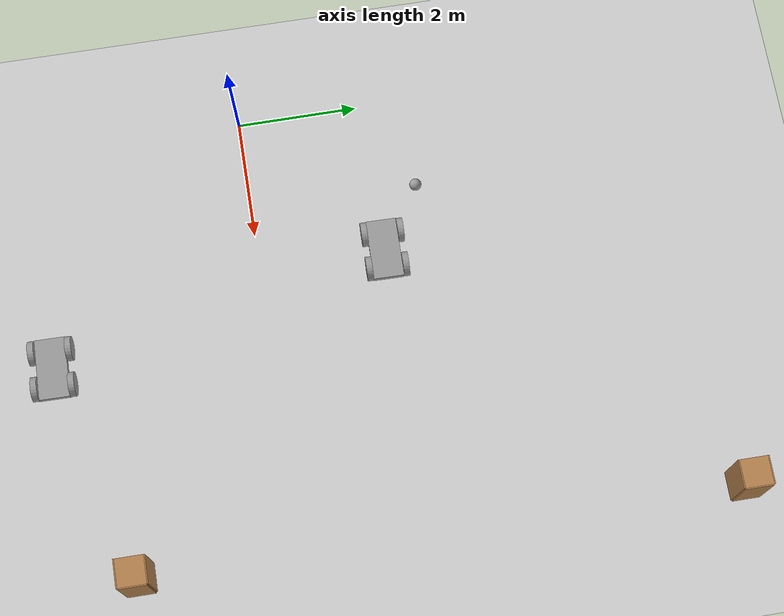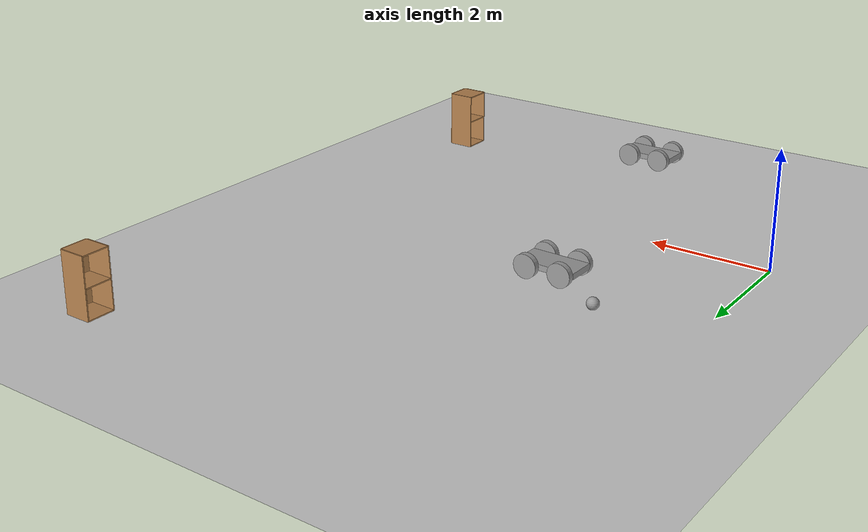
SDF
<sdf version="1.6">
 <world name="default">
  <model name="ground_plane">
   <static>1</static>
   <link name="link">
    <collision name="collision">
     <geometry><plane><normal>0 0 1</normal><size>100 100</size></plane></geometry>
     <surface>
      <contact><collide_bitmask>65535</collide_bitmask></contact>
      <friction><ode><mu>100</mu><mu2>50</mu2></ode></friction>
     </surface>
    </collision>
    <visual name="visual">
     <cast_shadows>0</cast_shadows>
     <geometry><plane><normal>0 0 1</normal><size>100 100</size></plane></geometry>
     <material>
      <script><uri>file://media/materials/scripts/gazebo.material</uri><name>Gazebo/Grey</name></script>
     </material>
    </visual>
   </link>
  </model>
  <model name="cabinet">
   <static>1</static>
   <link name="cabinet_bottom_plate">
    <inertial>
     <pose>0 0 -1 0 -0 0</pose>
     <inertia><ixx>2.05</ixx><ixy>0</ixy><ixz>0</ixz><iyy>2.05</iyy><iyz>0</iyz><izz>2.05</izz></inertia>
     <mass>25</mass>
    </inertial>
    <collision name="cabinet_bottom_plate_geom">
     <pose>0 0 0.01 0 -0 0</pose>
     <geometry><box><size>0.45 0.45 0.02</size></box></geometry>
    </collision>
    <visual name="cabinet_bottom_plate_geom_visual">
     <pose>0 0 0.01 0 -0 0</pose>
     <geometry><box><size>0.45 0.45 0.02</size></box></geometry>
     <material>
      <script><uri>file://media/materials/scripts/gazebo.material</uri><name>Gazebo/Wood</name></script>
     </material>
    </visual>
    <collision name="cabinet_bottom_plate_geom_cabinet_back_plate">
     <pose>0.235 0 0.51 0 -0 0</pose>
     <geometry><box><size>0.02 0.45 1.02</size></box></geometry>
    </collision>
    <visual name="cabinet_bottom_plate_geom_cabinet_back_plate_visual">
     <pose>0.235 0 0.51 0 -0 0</pose>
     <geometry><box><size>0.02 0.45 1.02</size></box></geometry>
     <material>
      <script><uri>file://media/materials/scripts/gazebo.material</uri><name>Gazebo/Wood</name></script>
     </material>
    </visual>
    <collision name="cabinet_bottom_plate_geom_cabinet_left_plate">
     <pose>0 0.235 0.51 0 -0 0</pose>
     <geometry><box><size>0.45 0.02 1.02</size></box></geometry>
    </collision>
    <visual name="cabinet_bottom_plate_geom_cabinet_left_plate_visual">
     <pose>0 0.235 0.51 0 -0 0</pose>
     <geometry><box><size>0.45 0.02 1.02</size></box></geometry>
     <material>
      <script><uri>file://media/materials/scripts/gazebo.material</uri><name>Gazebo/Wood</name></script>
     </material>
    </visual>
    <collision name="cabinet_bottom_plate_geom_cabinet_middle_plate">
     <pose>0 0 0.51 0 -0 0</pose>
     <geometry><box><size>0.45 0.45 0.02</size></box></geometry>
    </collision>
    <visual name="cabinet_bottom_plate_geom_cabinet_middle_plate_visual">
     <pose>0 0 0.51 0 -0 0</pose>
     <geometry><box><size>0.45 0.45 0.02</size></box></geometry>
     <material>
      <script><uri>file://media/materials/scripts/gazebo.material</uri><name>Gazebo/Wood</name></script>
     </material>
    </visual>
    <collision name="cabinet_bottom_plate_geom_cabinet_right_plate">
     <pose>0 -0.235 0.51 0 -0 0</pose>
     <geometry><box><size>0.45 0.02 1.02</size></box></geometry>
    </collision>
    <visual name="cabinet_bottom_plate_geom_cabinet_right_plate_visual">
     <pose>0 -0.235 0.51 0 -0 0</pose>
     <geometry><box><size>0.45 0.02 1.02</size></box></geometry>
     <material>
      <script><uri>file://media/materials/scripts/gazebo.material</uri><name>Gazebo/Wood</name></script>
     </material>
    </visual>
    <collision name="cabinet_bottom_plate_geom_cabinet_top_plate">
     <pose>0 0 1.01 0 -0 0</pose>
     <geometry><box><size>0.45 0.45 0.02</size></box></geometry>
    </collision>
    <visual name="cabinet_bottom_plate_geom_cabinet_top_plate_visual">
     <pose>0 0 1.01 0 -0 0</pose>
     <geometry><box><size>0.45 0.45 0.02</size></box></geometry>
     <material>
      <script><uri>file://media/materials/scripts/gazebo.material</uri><name>Gazebo/Wood</name></script>
     </material>
    </visual>
   </link>
   <pose>7.38503 7.08593 0 0 -0 0</pose>
  </model>
  <model name="cabinet_0">
   <static>1</static>
   <link name="cabinet_bottom_plate">
    <inertial>
     <pose>0 0 -1 0 -0 0</pose>
     <inertia><ixx>2.05</ixx><ixy>0</ixy><ixz>0</ixz><iyy>2.05</iyy><iyz>0</iyz><izz>2.05</izz></inertia>
     <mass>25</mass>
    </inertial>
    <collision name="cabinet_bottom_plate_geom">
     <pose>0 0 0.01 0 -0 0</pose>
     <geometry><box><size>0.45 0.45 0.02</size></box></geometry>
    </collision>
    <visual name="cabinet_bottom_plate_geom_visual">
     <pose>0 0 0.01 0 -0 0</pose>
     <geometry><box><size>0.45 0.45 0.02</size></box></geometry>
     <material>
      <script><uri>file://media/materials/scripts/gazebo.material</uri><name>Gazebo/Wood</name></script>
     </material>
    </visual>
    <collision name="cabinet_bottom_plate_geom_cabinet_back_plate">
     <pose>0.235 0 0.51 0 -0 0</pose>
     <geometry><box><size>0.02 0.45 1.02</size></box></geometry>
    </collision>
    <visual name="cabinet_bottom_plate_geom_cabinet_back_plate_visual">
     <pose>0.235 0 0.51 0 -0 0</pose>
     <geometry><box><size>0.02 0.45 1.02</size></box></geometry>
     <material>
      <script><uri>file://media/materials/scripts/gazebo.material</uri><name>Gazebo/Wood</name></script>
     </material>
    </visual>
    <collision name="cabinet_bottom_plate_geom_cabinet_left_plate">
     <pose>0 0.235 0.51 0 -0 0</pose>
     <geometry><box><size>0.45 0.02 1.02</size></box></geometry>
    </collision>
    <visual name="cabinet_bottom_plate_geom_cabinet_left_plate_visual">
     <pose>0 0.235 0.51 0 -0 0</pose>
     <geometry><box><size>0.45 0.02 1.02</size></box></geometry>
     <material>
      <script><uri>file://media/materials/scripts/gazebo.material</uri><name>Gazebo/Wood</name></script>
     </material>
    </visual>
    <collision name="cabinet_bottom_plate_geom_cabinet_middle_plate">
     <pose>0 0 0.51 0 -0 0</pose>
     <geometry><box><size>0.45 0.45 0.02</size></box></geometry>
    </collision>
    <visual name="cabinet_bottom_plate_geom_cabinet_middle_plate_visual">
     <pose>0 0 0.51 0 -0 0</pose>
     <geometry><box><size>0.45 0.45 0.02</size></box></geometry>
     <material>
      <script><uri>file://media/materials/scripts/gazebo.material</uri><name>Gazebo/Wood</name></script>
     </material>
    </visual>
    <collision name="cabinet_bottom_plate_geom_cabinet_right_plate">
     <pose>0 -0.235 0.51 0 -0 0</pose>
     <geometry><box><size>0.45 0.02 1.02</size></box></geometry>
    </collision>
    <visual name="cabinet_bottom_plate_geom_cabinet_right_plate_visual">
     <pose>0 -0.235 0.51 0 -0 0</pose>
     <geometry><box><size>0.45 0.02 1.02</size></box></geometry>
     <material>
      <script><uri>file://media/materials/scripts/gazebo.material</uri><name>Gazebo/Wood</name></script>
     </material>
    </visual>
    <collision name="cabinet_bottom_plate_geom_cabinet_top_plate">
     <pose>0 0 1.01 0 -0 0</pose>
     <geometry><box><size>0.45 0.45 0.02</size></box></geometry>
    </collision>
    <visual name="cabinet_bottom_plate_geom_cabinet_top_plate_visual">
     <pose>0 0 1.01 0 -0 0</pose>
     <geometry><box><size>0.45 0.45 0.02</size></box></geometry>
     <material>
      <script><uri>file://media/materials/scripts/gazebo.material</uri><name>Gazebo/Wood</name></script>
     </material>
    </visual>
   </link>
   <pose>7.37126 -2.53429 0 0 -0 0</pose>
  </model>
  <model name="robot1">
   <link name="link_0">
    <inertial>
     <mass>1</mass>
     <inertia>
      <ixx>0.166667</ixx>
      <ixy>0</ixy>
      <ixz>0</ixz>
      <iyy>0.166667</iyy>
      <iyz>0</iyz>
      <izz>0.166667</izz>
     </inertia>
    </inertial>
    <visual name="visual">
     <geometry><box><size>1 0.5 0.1</size></box></geometry>
     <material>
      <lighting>1</lighting>
      <script><uri>file://media/materials/scripts/gazebo.material</uri><name>Gazebo/Grey</name></script>
      <shader type="pixel"><normal_map>__default__</normal_map></shader>
      <ambient>0.3 0.3 0.3 1</ambient>
      <diffuse>0.7 0.7 0.7 1</diffuse>
      <specular>0.01 0.01 0.01 1</specular>
      <emissive>0 0 0 1</emissive>
     </material>
    </visual>
    <collision name="collision">
     <geometry><box><size>1 0.5 0.1</size></box></geometry>
     <surface>
      <friction>
       <ode><mu>1</mu><mu2>1</mu2><fdir1>0 0 0</fdir1><slip1>0</slip1><slip2>0</slip2></ode>
       <torsional>
        <coefficient>1</coefficient>
        <patch_radius>0</patch_radius>
        <surface_radius>0</surface_radius>
        <use_patch_radius>1</use_patch_radius>
        <ode><slip>0</slip></ode>
       </torsional>
      </friction>
      <bounce><restitution_coefficient>0</restitution_coefficient><threshold>1e+06</threshold></bounce>
      <contact>
       <collide_without_contact>0</collide_without_contact>
       <collide_without_contact_bitmask>1</collide_without_contact_bitmask>
       <collide_bitmask>1</collide_bitmask>
       <ode>
        <soft_cfm>0</soft_cfm>
        <soft_erp>0.2</soft_erp>
        <kp>1e+13</kp>
        <kd>1</kd>
        <max_vel>0.01</max_vel>
        <min_depth>0</min_depth>
       </ode>
       <bullet>
        <split_impulse>1</split_impulse>
        <split_impulse_penetration_threshold>-0.01</split_impulse_penetration_threshold>
        <soft_cfm>0</soft_cfm>
        <soft_erp>0.2</soft_erp>
        <kp>1e+13</kp>
        <kd>1</kd>
       </bullet>
      </contact>
     </surface>
    </collision>
   </link>
   <link name="link_1">
    <pose>-0.3 -0.300019 0 1.5707 -0 0</pose>
    <inertial>
     <mass>1</mass>
     <inertia><ixx>0.145833</ixx><ixy>0</ixy><ixz>0</ixz><iyy>0.145833</iyy><iyz>0</iyz><izz>0.125</izz></inertia>
    </inertial>
    <visual name="visual">
     <geometry><cylinder><radius>0.2</radius><length>0.1</length></cylinder></geometry>
     <material>
      <lighting>1</lighting>
      <script><uri>file://media/materials/scripts/gazebo.material</uri><name>Gazebo/Grey</name></script>
      <shader type="pixel"><normal_map>__default__</normal_map></shader>
      <ambient>0.3 0.3 0.3 1</ambient>
      <diffuse>0.7 0.7 0.7 1</diffuse>
      <specular>0.01 0.01 0.01 1</specular>
      <emissive>0 0 0 1</emissive>
     </material>
    </visual>
    <collision name="collision">
     <geometry><cylinder><radius>0.2</radius><length>0.1</length></cylinder></geometry>
     <surface>
      <friction>
       <ode><mu>1</mu><mu2>1</mu2><fdir1>0 0 0</fdir1><slip1>0</slip1><slip2>0</slip2></ode>
       <torsional>
        <coefficient>1</coefficient>
        <patch_radius>0</patch_radius>
        <surface_radius>0</surface_radius>
        <use_patch_radius>1</use_patch_radius>
        <ode><slip>0</slip></ode>
       </torsional>
      </friction>
      <bounce><restitution_coefficient>0</restitution_coefficient><threshold>1e+06</threshold></bounce>
      <contact>
       <collide_without_contact>0</collide_without_contact>
       <collide_without_contact_bitmask>1</collide_without_contact_bitmask>
       <collide_bitmask>1</collide_bitmask>
       <ode>
        <soft_cfm>0</soft_cfm>
        <soft_erp>0.2</soft_erp>
        <kp>1e+13</kp>
        <kd>1</kd>
        <max_vel>0.01</max_vel>
        <min_depth>0</min_depth>
       </ode>
       <bullet>
        <split_impulse>1</split_impulse>
        <split_impulse_penetration_threshold>-0.01</split_impulse_penetration_threshold>
        <soft_cfm>0</soft_cfm>
        <soft_erp>0.2</soft_erp>
        <kp>1e+13</kp>
        <kd>1</kd>
       </bullet>
      </contact>
     </surface>
    </collision>
   </link>
   <link name="link_1_clone">
    <pose>-0.3 0.300019 0 1.5707 -0 0</pose>
    <inertial>
     <mass>1</mass>
     <inertia><ixx>0.145833</ixx><ixy>0</ixy><ixz>0</ixz><iyy>0.145833</iyy><iyz>0</iyz><izz>0.125</izz></inertia>
    </inertial>
    <visual name="visual">
     <geometry><cylinder><radius>0.2</radius><length>0.1</length></cylinder></geometry>
     <material>
      <lighting>1</lighting>
      <script><uri>file://media/materials/scripts/gazebo.material</uri><name>Gazebo/Grey</name></script>
      <shader type="pixel"><normal_map>__default__</normal_map></shader>
      <ambient>0.3 0.3 0.3 1</ambient>
      <diffuse>0.7 0.7 0.7 1</diffuse>
      <specular>0.01 0.01 0.01 1</specular>
      <emissive>0 0 0 1</emissive>
     </material>
    </visual>
    <collision name="collision">
     <geometry><cylinder><radius>0.2</radius><length>0.1</length></cylinder></geometry>
     <surface>
      <friction>
       <ode><mu>1</mu><mu2>1</mu2><fdir1>0 0 0</fdir1><slip1>0</slip1><slip2>0</slip2></ode>
       <torsional>
        <coefficient>1</coefficient>
        <patch_radius>0</patch_radius>
        <surface_radius>0</surface_radius>
        <use_patch_radius>1</use_patch_radius>
        <ode><slip>0</slip></ode>
       </torsional>
      </friction>
      <bounce><restitution_coefficient>0</restitution_coefficient><threshold>1e+06</threshold></bounce>
      <contact>
       <collide_without_contact>0</collide_without_contact>
       <collide_without_contact_bitmask>1</collide_without_contact_bitmask>
       <collide_bitmask>1</collide_bitmask>
       <ode>
        <soft_cfm>0</soft_cfm>
        <soft_erp>0.2</soft_erp>
        <kp>1e+13</kp>
        <kd>1</kd>
        <max_vel>0.01</max_vel>
        <min_depth>0</min_depth>
       </ode>
       <bullet>
        <split_impulse>1</split_impulse>
        <split_impulse_penetration_threshold>-0.01</split_impulse_penetration_threshold>
        <soft_cfm>0</soft_cfm>
        <soft_erp>0.2</soft_erp>
        <kp>1e+13</kp>
        <kd>1</kd>
       </bullet>
      </contact>
     </surface>
    </collision>
   </link>
   <link name="link_1_clone_0">
    <pose>0.3 -0.300019 0 1.5707 -0 0</pose>
    <inertial>
     <mass>1</mass>
     <inertia><ixx>0.145833</ixx><ixy>0</ixy><ixz>0</ixz><iyy>0.145833</iyy><iyz>0</iyz><izz>0.125</izz></inertia>
    </inertial>
    <visual name="visual">
     <geometry><cylinder><radius>0.2</radius><length>0.1</length></cylinder></geometry>
     <material>
      <lighting>1</lighting>
      <script><uri>file://media/materials/scripts/gazebo.material</uri><name>Gazebo/Grey</name></script>
      <shader type="pixel"><normal_map>__default__</normal_map></shader>
      <ambient>0.3 0.3 0.3 1</ambient>
      <diffuse>0.7 0.7 0.7 1</diffuse>
      <specular>0.01 0.01 0.01 1</specular>
      <emissive>0 0 0 1</emissive>
     </material>
    </visual>
    <collision name="collision">
     <geometry><cylinder><radius>0.2</radius><length>0.1</length></cylinder></geometry>
     <surface>
      <friction>
       <ode><mu>1</mu><mu2>1</mu2><fdir1>0 0 0</fdir1><slip1>0</slip1><slip2>0</slip2></ode>
       <torsional>
        <coefficient>1</coefficient>
        <patch_radius>0</patch_radius>
        <surface_radius>0</surface_radius>
        <use_patch_radius>1</use_patch_radius>
        <ode><slip>0</slip></ode>
       </torsional>
      </friction>
      <bounce><restitution_coefficient>0</restitution_coefficient><threshold>1e+06</threshold></bounce>
      <contact>
       <collide_without_contact>0</collide_without_contact>
       <collide_without_contact_bitmask>1</collide_without_contact_bitmask>
       <collide_bitmask>1</collide_bitmask>
       <ode>
        <soft_cfm>0</soft_cfm>
        <soft_erp>0.2</soft_erp>
        <kp>1e+13</kp>
        <kd>1</kd>
        <max_vel>0.01</max_vel>
        <min_depth>0</min_depth>
       </ode>
       <bullet>
        <split_impulse>1</split_impulse>
        <split_impulse_penetration_threshold>-0.01</split_impulse_penetration_threshold>
        <soft_cfm>0</soft_cfm>
        <soft_erp>0.2</soft_erp>
        <kp>1e+13</kp>
        <kd>1</kd>
       </bullet>
      </contact>
     </surface>
    </collision>
   </link>
   <link name="link_1_clone_1">
    <pose>0.3 0.300019 0 1.5707 -0 0</pose>
    <inertial>
     <mass>1</mass>
     <inertia><ixx>0.145833</ixx><ixy>0</ixy><ixz>0</ixz><iyy>0.145833</iyy><iyz>0</iyz><izz>0.125</izz></inertia>
    </inertial>
    <visual name="visual">
     <geometry><cylinder><radius>0.2</radius><length>0.1</length></cylinder></geometry>
     <material>
      <lighting>1</lighting>
      <script><uri>file://media/materials/scripts/gazebo.material</uri><name>Gazebo/Grey</name></script>
      <shader type="pixel"><normal_map>__default__</normal_map></shader>
      <ambient>0.3 0.3 0.3 1</ambient>
      <diffuse>0.7 0.7 0.7 1</diffuse>
      <specular>0.01 0.01 0.01 1</specular>
      <emissive>0 0 0 1</emissive>
     </material>
    </visual>
    <collision name="collision">
     <geometry><cylinder><radius>0.2</radius><length>0.1</length></cylinder></geometry>
     <surface>
      <friction>
       <ode><mu>1</mu><mu2>1</mu2><fdir1>0 0 0</fdir1><slip1>0</slip1><slip2>0</slip2></ode>
       <torsional>
        <coefficient>1</coefficient>
        <patch_radius>0</patch_radius>
        <surface_radius>0</surface_radius>
        <use_patch_radius>1</use_patch_radius>
        <ode><slip>0</slip></ode>
       </torsional>
      </friction>
      <bounce><restitution_coefficient>0</restitution_coefficient><threshold>1e+06</threshold></bounce>
      <contact>
       <collide_without_contact>0</collide_without_contact>
       <collide_without_contact_bitmask>1</collide_without_contact_bitmask>
       <collide_bitmask>1</collide_bitmask>
       <ode>
        <soft_cfm>0</soft_cfm>
        <soft_erp>0.2</soft_erp>
        <kp>1e+13</kp>
        <kd>1</kd>
        <max_vel>0.01</max_vel>
        <min_depth>0</min_depth>
       </ode>
       <bullet>
        <split_impulse>1</split_impulse>
        <split_impulse_penetration_threshold>-0.01</split_impulse_penetration_threshold>
        <soft_cfm>0</soft_cfm>
        <soft_erp>0.2</soft_erp>
        <kp>1e+13</kp>
        <kd>1</kd>
       </bullet>
      </contact>
     </surface>
    </collision>
   </link>
   <joint name="link_0_JOINT_1" type="revolute">
    <parent>link_0</parent>
    <child>link_1_clone</child>
    <axis>
     <xyz>0 0 1</xyz>
     <use_parent_model_frame>0</use_parent_model_frame>
     <limit>
      <lower>-1.79769e+308</lower>
      <upper>1.79769e+308</upper>
      <effort>-1</effort>
      <velocity>-1</velocity>
     </limit>
     <dynamics>
      <spring_reference>0</spring_reference>
      <spring_stiffness>0</spring_stiffness>
      <damping>0</damping>
     </dynamics>
    </axis>
    <physics>
     <ode><limit><cfm>0</cfm><erp>0.2</erp></limit><suspension><cfm>0</cfm><erp>0.2</erp></suspension></ode>
    </physics>
   </joint>
   <joint name="link_0_JOINT_2" type="revolute">
    <parent>link_0</parent>
    <child>link_1</child>
    <axis>
     <xyz>0 0 1</xyz>
     <use_parent_model_frame>0</use_parent_model_frame>
     <limit>
      <lower>-1.79769e+308</lower>
      <upper>1.79769e+308</upper>
      <effort>-1</effort>
      <velocity>-1</velocity>
     </limit>
     <dynamics>
      <spring_reference>0</spring_reference>
      <spring_stiffness>0</spring_stiffness>
      <damping>0</damping>
     </dynamics>
    </axis>
    <physics>
     <ode><limit><cfm>0</cfm><erp>0.2</erp></limit><suspension><cfm>0</cfm><erp>0.2</erp></suspension></ode>
    </physics>
   </joint>
   <joint name="link_0_JOINT_3" type="revolute">
    <parent>link_0</parent>
    <child>link_1_clone_1</child>
    <axis>
     <xyz>0 0 1</xyz>
     <use_parent_model_frame>0</use_parent_model_frame>
     <limit>
      <lower>-1.79769e+308</lower>
      <upper>1.79769e+308</upper>
      <effort>-1</effort>
      <velocity>-1</velocity>
     </limit>
     <dynamics>
      <spring_reference>0</spring_reference>
      <spring_stiffness>0</spring_stiffness>
      <damping>0</damping>
     </dynamics>
    </axis>
    <physics>
     <ode><limit><cfm>0</cfm><erp>0.2</erp></limit><suspension><cfm>0</cfm><erp>0.2</erp></suspension></ode>
    </physics>
   </joint>
   <joint name="link_0_JOINT_4" type="revolute">
    <parent>link_0</parent>
    <child>link_1_clone_0</child>
    <axis>
     <xyz>0 0 1</xyz>
     <use_parent_model_frame>0</use_parent_model_frame>
     <limit>
      <lower>-1.79769e+308</lower>
      <upper>1.79769e+308</upper>
      <effort>-1</effort>
      <velocity>-1</velocity>
     </limit>
     <dynamics>
      <spring_reference>0</spring_reference>
      <spring_stiffness>0</spring_stiffness>
      <damping>0</damping>
     </dynamics>
    </axis>
    <physics>
     <ode><limit><cfm>0</cfm><erp>0.2</erp></limit><suspension><cfm>0</cfm><erp>0.2</erp></suspension></ode>
    </physics>
   </joint>
   <static>0</static>
   <pose>3.81405 -3.51746 0.200005 0 0 -0.013909</pose>
  </model>
  <model name="robot1_0">
   <link name="link_0">
    <inertial>
     <mass>1</mass>
     <inertia>
      <ixx>0.166667</ixx>
      <ixy>0</ixy>
      <ixz>0</ixz>
      <iyy>0.166667</iyy>
      <iyz>0</iyz>
      <izz>0.166667</izz>
     </inertia>
    </inertial>
    <visual name="visual">
     <geometry><box><size>1 0.5 0.1</size></box></geometry>
     <material>
      <lighting>1</lighting>
      <script><uri>file://media/materials/scripts/gazebo.material</uri><name>Gazebo/Grey</name></script>
      <shader type="pixel"><normal_map>__default__</normal_map></shader>
      <ambient>0.3 0.3 0.3 1</ambient>
      <diffuse>0.7 0.7 0.7 1</diffuse>
      <specular>0.01 0.01 0.01 1</specular>
      <emissive>0 0 0 1</emissive>
     </material>
    </visual>
    <collision name="collision">
     <geometry><box><size>1 0.5 0.1</size></box></geometry>
     <surface>
      <friction>
       <ode><mu>1</mu><mu2>1</mu2><fdir1>0 0 0</fdir1><slip1>0</slip1><slip2>0</slip2></ode>
       <torsional>
        <coefficient>1</coefficient>
        <patch_radius>0</patch_radius>
        <surface_radius>0</surface_radius>
        <use_patch_radius>1</use_patch_radius>
        <ode><slip>0</slip></ode>
       </torsional>
      </friction>
      <bounce><restitution_coefficient>0</restitution_coefficient><threshold>1e+06</threshold></bounce>
      <contact>
       <collide_without_contact>0</collide_without_contact>
       <collide_without_contact_bitmask>1</collide_without_contact_bitmask>
       <collide_bitmask>1</collide_bitmask>
       <ode>
        <soft_cfm>0</soft_cfm>
        <soft_erp>0.2</soft_erp>
        <kp>1e+13</kp>
        <kd>1</kd>
        <max_vel>0.01</max_vel>
        <min_depth>0</min_depth>
       </ode>
       <bullet>
        <split_impulse>1</split_impulse>
        <split_impulse_penetration_threshold>-0.01</split_impulse_penetration_threshold>
        <soft_cfm>0</soft_cfm>
        <soft_erp>0.2</soft_erp>
        <kp>1e+13</kp>
        <kd>1</kd>
       </bullet>
      </contact>
     </surface>
    </collision>
   </link>
   <link name="link_1">
    <pose>-0.3 -0.300019 0 1.5707 -0 0</pose>
    <inertial>
     <mass>1</mass>
     <inertia><ixx>0.145833</ixx><ixy>0</ixy><ixz>0</ixz><iyy>0.145833</iyy><iyz>0</iyz><izz>0.125</izz></inertia>
    </inertial>
    <visual name="visual">
     <geometry><cylinder><radius>0.2</radius><length>0.1</length></cylinder></geometry>
     <material>
      <lighting>1</lighting>
      <script><uri>file://media/materials/scripts/gazebo.material</uri><name>Gazebo/Grey</name></script>
      <shader type="pixel"><normal_map>__default__</normal_map></shader>
      <ambient>0.3 0.3 0.3 1</ambient>
      <diffuse>0.7 0.7 0.7 1</diffuse>
      <specular>0.01 0.01 0.01 1</specular>
      <emissive>0 0 0 1</emissive>
     </material>
    </visual>
    <collision name="collision">
     <geometry><cylinder><radius>0.2</radius><length>0.1</length></cylinder></geometry>
     <surface>
      <friction>
       <ode><mu>1</mu><mu2>1</mu2><fdir1>0 0 0</fdir1><slip1>0</slip1><slip2>0</slip2></ode>
       <torsional>
        <coefficient>1</coefficient>
        <patch_radius>0</patch_radius>
        <surface_radius>0</surface_radius>
        <use_patch_radius>1</use_patch_radius>
        <ode><slip>0</slip></ode>
       </torsional>
      </friction>
      <bounce><restitution_coefficient>0</restitution_coefficient><threshold>1e+06</threshold></bounce>
      <contact>
       <collide_without_contact>0</collide_without_contact>
       <collide_without_contact_bitmask>1</collide_without_contact_bitmask>
       <collide_bitmask>1</collide_bitmask>
       <ode>
        <soft_cfm>0</soft_cfm>
        <soft_erp>0.2</soft_erp>
        <kp>1e+13</kp>
        <kd>1</kd>
        <max_vel>0.01</max_vel>
        <min_depth>0</min_depth>
       </ode>
       <bullet>
        <split_impulse>1</split_impulse>
        <split_impulse_penetration_threshold>-0.01</split_impulse_penetration_threshold>
        <soft_cfm>0</soft_cfm>
        <soft_erp>0.2</soft_erp>
        <kp>1e+13</kp>
        <kd>1</kd>
       </bullet>
      </contact>
     </surface>
    </collision>
   </link>
   <link name="link_1_clone">
    <pose>-0.3 0.300019 0 1.5707 -0 0</pose>
    <inertial>
     <mass>1</mass>
     <inertia><ixx>0.145833</ixx><ixy>0</ixy><ixz>0</ixz><iyy>0.145833</iyy><iyz>0</iyz><izz>0.125</izz></inertia>
    </inertial>
    <visual name="visual">
     <geometry><cylinder><radius>0.2</radius><length>0.1</length></cylinder></geometry>
     <material>
      <lighting>1</lighting>
      <script><uri>file://media/materials/scripts/gazebo.material</uri><name>Gazebo/Grey</name></script>
      <shader type="pixel"><normal_map>__default__</normal_map></shader>
      <ambient>0.3 0.3 0.3 1</ambient>
      <diffuse>0.7 0.7 0.7 1</diffuse>
      <specular>0.01 0.01 0.01 1</specular>
      <emissive>0 0 0 1</emissive>
     </material>
    </visual>
    <collision name="collision">
     <geometry><cylinder><radius>0.2</radius><length>0.1</length></cylinder></geometry>
     <surface>
      <friction>
       <ode><mu>1</mu><mu2>1</mu2><fdir1>0 0 0</fdir1><slip1>0</slip1><slip2>0</slip2></ode>
       <torsional>
        <coefficient>1</coefficient>
        <patch_radius>0</patch_radius>
        <surface_radius>0</surface_radius>
        <use_patch_radius>1</use_patch_radius>
        <ode><slip>0</slip></ode>
       </torsional>
      </friction>
      <bounce><restitution_coefficient>0</restitution_coefficient><threshold>1e+06</threshold></bounce>
      <contact>
       <collide_without_contact>0</collide_without_contact>
       <collide_without_contact_bitmask>1</collide_without_contact_bitmask>
       <collide_bitmask>1</collide_bitmask>
       <ode>
        <soft_cfm>0</soft_cfm>
        <soft_erp>0.2</soft_erp>
        <kp>1e+13</kp>
        <kd>1</kd>
        <max_vel>0.01</max_vel>
        <min_depth>0</min_depth>
       </ode>
       <bullet>
        <split_impulse>1</split_impulse>
        <split_impulse_penetration_threshold>-0.01</split_impulse_penetration_threshold>
        <soft_cfm>0</soft_cfm>
        <soft_erp>0.2</soft_erp>
        <kp>1e+13</kp>
        <kd>1</kd>
       </bullet>
      </contact>
     </surface>
    </collision>
   </link>
   <link name="link_1_clone_0">
    <pose>0.3 -0.300019 0 1.5707 -0 0</pose>
    <inertial>
     <mass>1</mass>
     <inertia><ixx>0.145833</ixx><ixy>0</ixy><ixz>0</ixz><iyy>0.145833</iyy><iyz>0</iyz><izz>0.125</izz></inertia>
    </inertial>
    <visual name="visual">
     <geometry><cylinder><radius>0.2</radius><length>0.1</length></cylinder></geometry>
     <material>
      <lighting>1</lighting>
      <script><uri>file://media/materials/scripts/gazebo.material</uri><name>Gazebo/Grey</name></script>
      <shader type="pixel"><normal_map>__default__</normal_map></shader>
      <ambient>0.3 0.3 0.3 1</ambient>
      <diffuse>0.7 0.7 0.7 1</diffuse>
      <specular>0.01 0.01 0.01 1</specular>
      <emissive>0 0 0 1</emissive>
     </material>
    </visual>
    <collision name="collision">
     <geometry><cylinder><radius>0.2</radius><length>0.1</length></cylinder></geometry>
     <surface>
      <friction>
       <ode><mu>1</mu><mu2>1</mu2><fdir1>0 0 0</fdir1><slip1>0</slip1><slip2>0</slip2></ode>
       <torsional>
        <coefficient>1</coefficient>
        <patch_radius>0</patch_radius>
        <surface_radius>0</surface_radius>
        <use_patch_radius>1</use_patch_radius>
        <ode><slip>0</slip></ode>
       </torsional>
      </friction>
      <bounce><restitution_coefficient>0</restitution_coefficient><threshold>1e+06</threshold></bounce>
      <contact>
       <collide_without_contact>0</collide_without_contact>
       <collide_without_contact_bitmask>1</collide_without_contact_bitmask>
       <collide_bitmask>1</collide_bitmask>
       <ode>
        <soft_cfm>0</soft_cfm>
        <soft_erp>0.2</soft_erp>
        <kp>1e+13</kp>
        <kd>1</kd>
        <max_vel>0.01</max_vel>
        <min_depth>0</min_depth>
       </ode>
       <bullet>
        <split_impulse>1</split_impulse>
        <split_impulse_penetration_threshold>-0.01</split_impulse_penetration_threshold>
        <soft_cfm>0</soft_cfm>
        <soft_erp>0.2</soft_erp>
        <kp>1e+13</kp>
        <kd>1</kd>
       </bullet>
      </contact>
     </surface>
    </collision>
   </link>
   <link name="link_1_clone_1">
    <pose>0.3 0.300019 0 1.5707 -0 0</pose>
    <inertial>
     <mass>1</mass>
     <inertia><ixx>0.145833</ixx><ixy>0</ixy><ixz>0</ixz><iyy>0.145833</iyy><iyz>0</iyz><izz>0.125</izz></inertia>
    </inertial>
    <visual name="visual">
     <geometry><cylinder><radius>0.2</radius><length>0.1</length></cylinder></geometry>
     <material>
      <lighting>1</lighting>
      <script><uri>file://media/materials/scripts/gazebo.material</uri><name>Gazebo/Grey</name></script>
      <shader type="pixel"><normal_map>__default__</normal_map></shader>
      <ambient>0.3 0.3 0.3 1</ambient>
      <diffuse>0.7 0.7 0.7 1</diffuse>
      <specular>0.01 0.01 0.01 1</specular>
      <emissive>0 0 0 1</emissive>
     </material>
    </visual>
    <collision name="collision">
     <geometry><cylinder><radius>0.2</radius><length>0.1</length></cylinder></geometry>
     <surface>
      <friction>
       <ode><mu>1</mu><mu2>1</mu2><fdir1>0 0 0</fdir1><slip1>0</slip1><slip2>0</slip2></ode>
       <torsional>
        <coefficient>1</coefficient>
        <patch_radius>0</patch_radius>
        <surface_radius>0</surface_radius>
        <use_patch_radius>1</use_patch_radius>
        <ode><slip>0</slip></ode>
       </torsional>
      </friction>
      <bounce><restitution_coefficient>0</restitution_coefficient><threshold>1e+06</threshold></bounce>
      <contact>
       <collide_without_contact>0</collide_without_contact>
       <collide_without_contact_bitmask>1</collide_without_contact_bitmask>
       <collide_bitmask>1</collide_bitmask>
       <ode>
        <soft_cfm>0</soft_cfm>
        <soft_erp>0.2</soft_erp>
        <kp>1e+13</kp>
        <kd>1</kd>
        <max_vel>0.01</max_vel>
        <min_depth>0</min_depth>
       </ode>
       <bullet>
        <split_impulse>1</split_impulse>
        <split_impulse_penetration_threshold>-0.01</split_impulse_penetration_threshold>
        <soft_cfm>0</soft_cfm>
        <soft_erp>0.2</soft_erp>
        <kp>1e+13</kp>
        <kd>1</kd>
       </bullet>
      </contact>
     </surface>
    </collision>
   </link>
   <joint name="link_0_JOINT_1" type="revolute">
    <parent>link_0</parent>
    <child>link_1_clone</child>
    <axis>
     <xyz>0 0 1</xyz>
     <use_parent_model_frame>0</use_parent_model_frame>
     <limit>
      <lower>-1.79769e+308</lower>
      <upper>1.79769e+308</upper>
      <effort>-1</effort>
      <velocity>-1</velocity>
     </limit>
     <dynamics>
      <spring_reference>0</spring_reference>
      <spring_stiffness>0</spring_stiffness>
      <damping>0</damping>
     </dynamics>
    </axis>
    <physics>
     <ode><limit><cfm>0</cfm><erp>0.2</erp></limit><suspension><cfm>0</cfm><erp>0.2</erp></suspension></ode>
    </physics>
   </joint>
   <joint name="link_0_JOINT_2" type="revolute">
    <parent>link_0</parent>
    <child>link_1</child>
    <axis>
     <xyz>0 0 1</xyz>
     <use_parent_model_frame>0</use_parent_model_frame>
     <limit>
      <lower>-1.79769e+308</lower>
      <upper>1.79769e+308</upper>
      <effort>-1</effort>
      <velocity>-1</velocity>
     </limit>
     <dynamics>
      <spring_reference>0</spring_reference>
      <spring_stiffness>0</spring_stiffness>
      <damping>0</damping>
     </dynamics>
    </axis>
    <physics>
     <ode><limit><cfm>0</cfm><erp>0.2</erp></limit><suspension><cfm>0</cfm><erp>0.2</erp></suspension></ode>
    </physics>
   </joint>
   <joint name="link_0_JOINT_3" type="revolute">
    <parent>link_0</parent>
    <child>link_1_clone_1</child>
    <axis>
     <xyz>0 0 1</xyz>
     <use_parent_model_frame>0</use_parent_model_frame>
     <limit>
      <lower>-1.79769e+308</lower>
      <upper>1.79769e+308</upper>
      <effort>-1</effort>
      <velocity>-1</velocity>
     </limit>
     <dynamics>
      <spring_reference>0</spring_reference>
      <spring_stiffness>0</spring_stiffness>
      <damping>0</damping>
     </dynamics>
    </axis>
    <physics>
     <ode><limit><cfm>0</cfm><erp>0.2</erp></limit><suspension><cfm>0</cfm><erp>0.2</erp></suspension></ode>
    </physics>
   </joint>
   <joint name="link_0_JOINT_4" type="revolute">
    <parent>link_0</parent>
    <child>link_1_clone_0</child>
    <axis>
     <xyz>0 0 1</xyz>
     <use_parent_model_frame>0</use_parent_model_frame>
     <limit>
      <lower>-1.79769e+308</lower>
      <upper>1.79769e+308</upper>
      <effort>-1</effort>
      <velocity>-1</velocity>
     </limit>
     <dynamics>
      <spring_reference>0</spring_reference>
      <spring_stiffness>0</spring_stiffness>
      <damping>0</damping>
     </dynamics>
    </axis>
    <physics>
     <ode><limit><cfm>0</cfm><erp>0.2</erp></limit><suspension><cfm>0</cfm><erp>0.2</erp></suspension></ode>
    </physics>
   </joint>
   <static>0</static>
   <pose>2.64979 2.08552 0.200003 1e-06 8e-06 -0.013533</pose>
  </model>
  <model name="my_ball">
   <link name="link">
    <inertial>
     <mass>1</mass>
     <inertia><ixx>0.1</ixx><ixy>0</ixy><ixz>0</ixz><iyy>0.1</iyy><iyz>0</iyz><izz>0.1</izz></inertia>
    </inertial>
    <visual name="visual">
     <geometry><sphere><radius>0.1</radius></sphere></geometry>
     <material>
      <script><name>Gazebo/Grey</name><uri>file://media/materials/scripts/gazebo.material</uri></script>
      <shader type="pixel"><normal_map>__default__</normal_map></shader>
      <ambient>1 1 1 1</ambient>
      <diffuse>1 1 1 1</diffuse>
      <specular>1 1 1 1</specular>
      <emissive>1 1 1 1</emissive>
     </material>
    </visual>
    <collision name="collision">
     <geometry><sphere><radius>0.1</radius></sphere></geometry>
     <surface>
      <friction>
       <ode><mu>1</mu><mu2>1</mu2><fdir1>0 0 0</fdir1><slip1>0</slip1><slip2>0</slip2></ode>
       <torsional>
        <coefficient>1</coefficient>
        <patch_radius>0</patch_radius>
        <surface_radius>0</surface_radius>
        <use_patch_radius>1</use_patch_radius>
        <ode><slip>0</slip></ode>
       </torsional>
      </friction>
      <bounce><restitution_coefficient>0</restitution_coefficient><threshold>1e+06</threshold></bounce>
      <contact>
       <collide_without_contact>0</collide_without_contact>
       <collide_without_contact_bitmask>1</collide_without_contact_bitmask>
       <collide_bitmask>1</collide_bitmask>
       <ode>
        <soft_cfm>0</soft_cfm>
        <soft_erp>0.2</soft_erp>
        <kp>1e+13</kp>
        <kd>1</kd>
        <max_vel>0.01</max_vel>
        <min_depth>0</min_depth>
       </ode>
       <bullet>
        <split_impulse>1</split_impulse>
        <split_impulse_penetration_threshold>-0.01</split_impulse_penetration_threshold>
        <soft_cfm>0</soft_cfm>
        <soft_erp>0.2</soft_erp>
        <kp>1e+13</kp>
        <kd>1</kd>
       </bullet>
      </contact>
     </surface>
    </collision>
   </link>
   <static>0</static>
   <pose>1.56623 2.77741 0.1 0 -0 0</pose>
  </model>
 </world>
</sdf>
